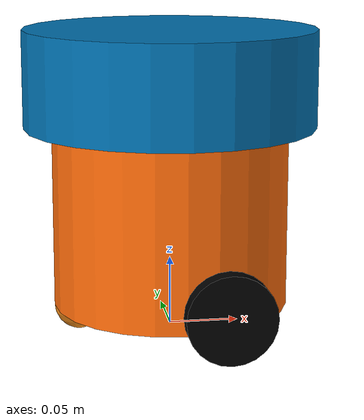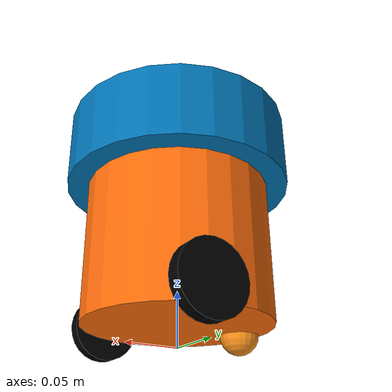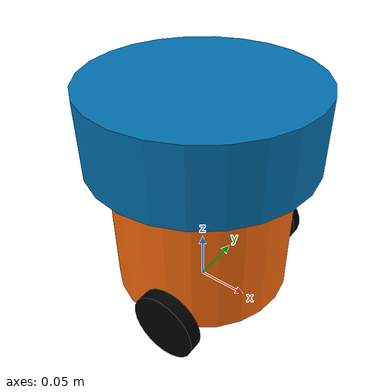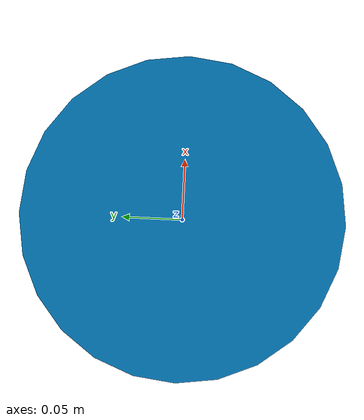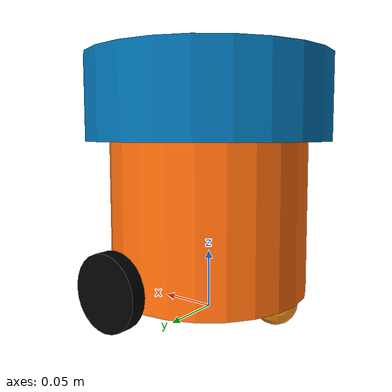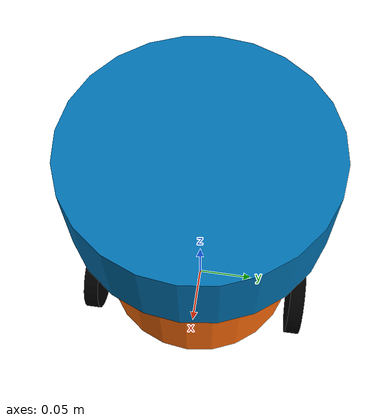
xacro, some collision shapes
<?xml version="1.0"?>
<robot xmlns:xacro="http://www.ros.org/wiki/xacro" name="diffrobot">

	<!-- This will include all the contents of example_include.xacro first. Go check it out! -->
	<xacro:include filename="diffrobot_include.xacro" />
	<xacro:include filename="diffrobot_gazebo.xacro" />

	<!-- This first link called "world" is empty -->

	<!-- A simple fixed joint from our empty world link, to our base. -->
	<!-- The base origin is offset from the world origin. -->

	<link name="base_link">
		<visual name="base_link_visual">
			<origin xyz="0 0 ${caster_radius + chassis_length/2}" rpy="0 0 0"/>
			<geometry>
				<cylinder length="${chassis_length}" radius="${chassis_radius}"/>
			</geometry>
			<material name="orange"/>
		</visual>

		<collision name="base_link_collision">
			<origin xyz="0 0 ${caster_radius + chassis_length/2}" rpy="0 0 0"/>
			<geometry>
				<cylinder length="${chassis_length}" radius="${chassis_radius}"/>
			</geometry>
		</collision>

		<visual name="base_link_caster_visual">
			<origin xyz="-${chassis_radius - caster_radius} 0 ${caster_radius}" rpy="0 0 0"/>
			<geometry>
				<sphere radius="${caster_radius}"/>
			</geometry>
		</visual>

		<collision name="base_link_caster_collision">
			<origin xyz="-${chassis_radius - caster_radius} 0 ${caster_radius}" rpy="0 0 0"/>
			<geometry>
				<sphere radius="${caster_radius}"/>
			</geometry>
			<surface>
				<friction>
					<ode>
						<mu>0</mu>
						<mu2>0</mu2>
						<slip1>1.0</slip1>
						<slip2>1.0</slip2>
					</ode>
				</friction>
			</surface>
		</collision>

		<xacro:inertial_cylinder radius="${chassis_radius}" length="${chassis_length}" mass="${chassis_mass}">
			<origin xyz="0 0 ${caster_radius + chassis_length/2}" rpy="0 0 0"/>
		</xacro:inertial_cylinder>
	</link>	<!-- base_link -->

	<!-- Robot footprint -->
	<link name="base_footprint"/>

	<joint name="base_footprint_joint" type="fixed">
		<parent link="base_link"/>
		<child link="base_footprint"/>
		<origin xyz="0.0 0.0 ${-(caster_radius+chassis_length/2)}" rpy="0.0 0.0 0.0"/>
	</joint>

	<!-- wheel definition -->
	<xacro:wheel prefix="left" reflect="1.0"/>
	<xacro:wheel prefix="right" reflect="-1.0"/>

	<!-- LIDAR -->
	<link name="lidar">
		<collision>
			<origin xyz="0 0 0" rpy="0 0 0"/>
			<geometry>
				<cylinder length="0.07" radius="0.105"/>
			</geometry>
		</collision>

		<visual>
			<origin xyz="0 0 0" rpy="0 0 0"/>
			<geometry>
				<mesh filename="file://$(find diffrobot_description)/meshes/hokuyo.dae"/>
			</geometry>
		</visual>

		<inertial>
			<mass value="1e-5" />
			<origin xyz="0 0 0" rpy="0 0 0"/>
			<inertia ixx="1e-6" ixy="0" ixz="0" iyy="1e-6" iyz="0" izz="1e-6" />
		</inertial>
	</link>

	<joint name="lidar_joint" type="fixed">
		<origin xyz="0 0 ${chassis_length + caster_radius + 0.035}" rpy="0 0 0"/>
		<parent link="base_link"/>
		<child link="lidar"/>
	</joint>

</robot>

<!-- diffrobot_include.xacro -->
<robot name ="diffrobot"
    xmlns:xacro="http://www.ros.org/wiki/xacro">

    <!-- This file is not a robot in and of itself, it just contains some useful tags that could be included in any robot -->

    <xacro:property name="chassis_radius" value="0.085" />
    <xacro:property name="chassis_length" value="0.13" />
    <xacro:property name="chassis_mass" value="5" />
    <xacro:property name="caster_radius" value="0.018" />
    <xacro:property name="PI" value="3.1415"/>
    <xacro:property name="wheels_radius" value="0.0315" />
    <xacro:property name="wheels_length" value="0.0125" />
    <xacro:property name="wheels_mass" value="2" />
    <xacro:property name="wheels_x_axis_offset" value="${chassis_radius/3}" />
    <xacro:property name="line_sensor_width" value="0.02"/>
    <xacro:property name="line_sensor_height" value="0.0025"/>
    <xacro:property name="line_sensor_length" value="${2*chassis_radius}"/>
    <xacro:property name="PCB_box_length" value="0.2" />
    <xacro:property name="PCB_box_width" value="0.3" />
    <xacro:property name="PCB_box_height" value="0.1" />
    <xacro:property name="PI" value="3.1415"/>
    <xacro:property name="ultrasonic_sensor_pcb_length" value="0.045"/>
    <xacro:property name="ultrasonic_sensor_pcb_width" value="0.020"/>
    <xacro:property name="ultrasonic_sensor_pcb_height" value="0.0015"/>
    <xacro:property name="ultrasonic_sensor_radius" value="0.008"/>
    <xacro:property name="ultrasonic_sensor_height" value="0.012"/>
    <xacro:property name="ultrasonic_sensor_rt_distance" value="0.026"/>

    <!-- Specify some colours -->

    <material name="black">
        <color rgba="0.0 0.0 0.0 1.0"/>
    </material>

    <material name="orange">
        <color rgba="${255/255} ${108/255} ${10/255} 1.0"/>
    </material>

    <material name="gray">
        <color rgba="${128/255} ${128/255} ${128/255} 1.0"/>
    </material>

    <material name="darkblue">
        <color rgba="${60/255} ${50/255} ${200/255} 1.0"/>
    </material>

    <!-- Specify some standard inertial calculations https://en.wikipedia.org/wiki/List_of_moments_of_inertia -->
    <!-- These make use of xacro's mathematical functionality -->

    <xacro:macro name="inertial_cylinder" params="radius length mass *origin">
        <inertial>
            <xacro:insert_block name="origin"/>
            <mass value ="${mass}" />
            <inertia ixx="${(1/12)*mass*(3*radius*radius+length*length)}" ixy="0.0" ixz="0.0" iyy="${(1/12)*mass*(3*radius*radius+length*length)}" iyz="0.0" izz="${(1/2)*mass*radius*radius}" />
        </inertial>
    </xacro:macro>

    <xacro:macro name="wheel" params="prefix reflect">
        <link name="${prefix}_wheel">
            <visual name="${prefix}_wheel_visual">
                <geometry>
                    <cylinder length="${wheels_length}" radius="${wheels_radius}"/>
                </geometry>
                <origin xyz="0 0 0" rpy="0 0 0"/>
                <material name="black" />
            </visual>

            <collision name="${prefix}_wheel_collision">
                <geometry>
                    <cylinder length="${wheels_length}" radius="${wheels_radius}"/>
                </geometry>
                <origin xyz="0 0 0" rpy="0 0 0"/>
            </collision>

            <xacro:inertial_cylinder radius="${wheels_radius}" length="${wheels_length}" mass="${wheels_mass}">
                <origin xyz="0 0 0" rpy="0 0 0" />
            </xacro:inertial_cylinder>
        </link>

        <joint name="${prefix}_wheel_base_link_joint" type="continuous">
            <axis xyz="0 0 1" rpy="0 0 0"/>
            <parent link="base_link"/>
            <child link="${prefix}_wheel"/>
            <origin xyz="${wheels_x_axis_offset} ${reflect * (chassis_radius + wheels_length/2)} ${wheels_radius}" rpy="0 ${PI/2} ${PI/2}"/>
            <dynamics damping="0.0" friction="0.0"/>
        </joint>
    </xacro:macro>

</robot>
